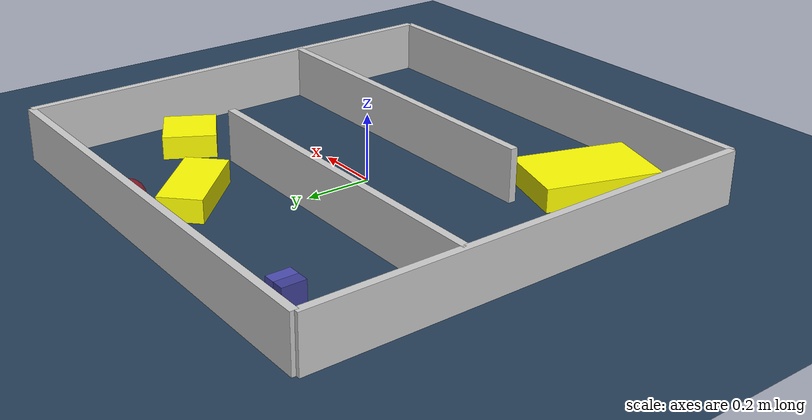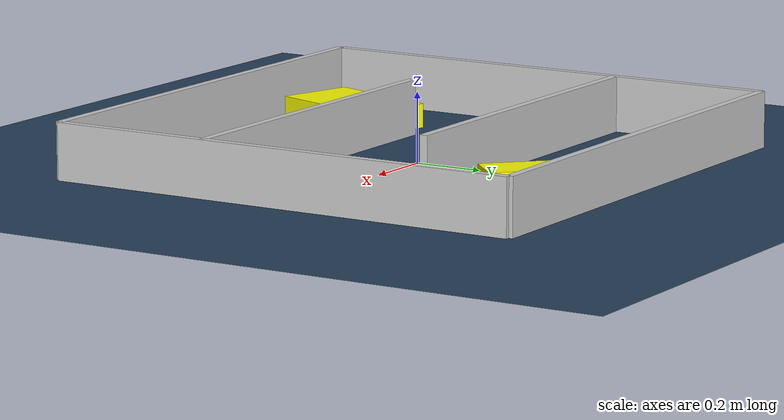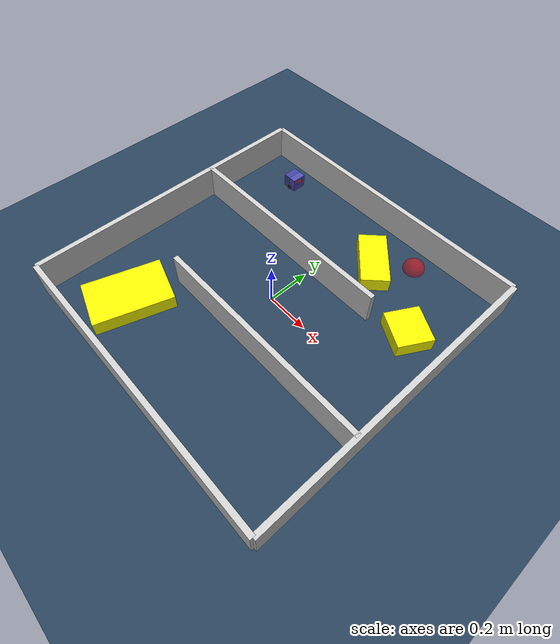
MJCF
<?xml version='1.0' encoding='utf-8'?>
<mujoco model="generated_environment">
  <option timestep="0.002" integrator="implicitfast" cone="elliptic" iterations="100" gravity="0 0 -9.81" />
  <default>
    <geom density="1" />
  </default>
  <asset>
    <texture builtin="gradient" height="3072" rgb1="0.3 0.5 0.7" rgb2="0 0 0" type="skybox" width="512" />
    <texture builtin="checker" height="300" mark="edge" markrgb="0.8 0.8 0.8" name="groundplane" rgb1="0.2 0.3 0.4" rgb2="0.1 0.2 0.3" type="2d" width="300" />
    <material name="groundplane" reflectance="0.2" texrepeat="5 5" texture="groundplane" texuniform="true" />
    <material name="robot" rgba="1.0 1.0 0.0 1.0" />
  </asset>
  <worldbody>
    <light dir="0 0 -1" directional="true" pos="0 0 1.5" />
    <geom condim="4" friction="0.5 0.005 0.001" material="groundplane" name="floor" size="0 0 0.05" type="plane" />
    <body name="walls">
      <geom name="wall_1" condim="4" pos="-0.699000 0.000000 0.080000" rgba="0.800000011920929 0.800000011920929 0.800000011920929 1.0" size="0.011650 0.699000 0.080000" type="box" />
      <geom name="wall_2" condim="4" pos="0.699000 0.000000 0.080000" rgba="0.800000011920929 0.800000011920929 0.800000011920929 1.0" size="0.011650 0.699000 0.080000" type="box" />
      <geom name="wall_3" condim="4" pos="0.000000 -0.699000 0.080000" rgba="0.800000011920929 0.800000011920929 0.800000011920929 1.0" size="0.699000 0.011650 0.080000" type="box" />
      <geom name="wall_4" condim="4" pos="0.000000 0.699000 0.080000" rgba="0.800000011920929 0.800000011920929 0.800000011920929 1.0" size="0.699000 0.011650 0.080000" type="box" />
      <geom name="wall_5" condim="4" pos="0.174750 -0.233000 0.080000" rgba="0.800000011920929 0.800000011920929 0.800000011920929 1.0" size="0.524250 0.011650 0.080000" type="box" />
      <geom name="wall_6" condim="4" pos="-0.174750 0.233000 0.080000" rgba="0.800000011920929 0.800000011920929 0.800000011920929 1.0" size="0.524250 0.011650 0.080000" type="box" />
    </body>
    <body name="car" pos="-0.45499999999999996 0.5650000000000001 0.010000">
      <freejoint name="car_freejoint" />
      <inertial pos="0.000000 0 0.037500" mass="0.350000" diaginertia="0.000266 0.000266 0.000286" />
      <geom name="front_chassis_collision" type="box" pos="0.017500 0 0.037500" size="0.017500 0.035000 0.032500" rgba="0.3 0.3 0.7 1" />
      <geom name="rear_chassis_collision" type="box" pos="-0.017500 0 0.037500" size="0.017500 0.035000 0.032500" rgba="0.25 0.25 0.6 1" />
      <geom name="front_marker" type="box" pos="0.034000 0 0.050500" size="0.002000 0.015000 0.010000" rgba="1.0 0.2 0.2 1" contype="0" conaffinity="0" />
      <body name="rear_support_body" pos="-0.030000 0.000000 0.002500">
        <joint name="rear_caster_joint" type="ball" damping="0.0001" />
        <inertial pos="0 0 0" mass="0.025000" diaginertia="0.000001 0.000001 0.000001" />
        <geom name="rear_support" type="sphere" pos="0 0 0" size="0.002500" friction="0.000000 0.000000 0.000000" rgba="0.7 0.1 0.1 1" />
      </body>
      <body name="front_support_body" pos="0.030000 0.000000 0.002500">
        <joint name="front_caster_joint" type="ball" damping="0.0001" />
        <inertial pos="0 0 0" mass="0.025000" diaginertia="0.000001 0.000001 0.000001" />
        <geom name="front_support" type="sphere" pos="0 0 0" size="0.002500" friction="0.000000 0.000000 0.000000" rgba="0.1 0.7 0.1 1" />
      </body>
      <body name="left_wheel" pos="0.000000 0.037500 0.015000">
        <inertial pos="0 0 0" mass="0.050000" diaginertia="0.000003 0.000006 0.000003" />
        <joint name="left_wheel_joint" type="hinge" axis="0 1 0" />
        <geom name="left_wheel_collision" type="cylinder" size="0.015000 0.000500" euler="90 0 0" rgba="0.1 0.1 0.1 1" />
      </body>
      <body name="right_wheel" pos="0.000000 -0.037500 0.015000">
        <inertial pos="0 0 0" mass="0.050000" diaginertia="0.000003 0.000006 0.000003" />
        <joint name="right_wheel_joint" type="hinge" axis="0 1 0" />
        <geom name="right_wheel_collision" type="cylinder" size="0.015000 0.000500" euler="90 0 0" rgba="0.1 0.1 0.1 1" />
      </body>
    </body>
    <body name="obstacle_0_movable">
      <geom name="obstacle_0_movable" condim="4" pos="0.17096386269996222 0.46114978750203317 0.035" euler="0 0 134.69553949338905" friction="0.0 0.005 0.001" rgba="1 1 0 1" size="0.13277843022036417 0.0643992479726268 0.035" type="box" mass="0.1" />
      <joint type="free" />
    </body>
    <body name="obstacle_1_movable">
      <geom name="obstacle_1_movable" condim="4" pos="-0.4004744202407996 -0.4622221067403707 0.035" euler="0 0 162.41726528442786" friction="0.0 0.005 0.001" rgba="1 1 0 1" size="0.11265873508042443 0.17597247903833502 0.035" type="box" mass="0.1" />
      <joint type="free" />
    </body>
    <body name="obstacle_2_movable">
      <geom name="obstacle_2_movable" condim="4" pos="0.5086997122962318 0.28969819521813567 0.035" euler="0 0 60.758810447852305" friction="0.0 0.005 0.001" rgba="1 1 0 1" size="0.07914794258436092 0.08447915460738306 0.035" type="box" mass="0.1" />
      <joint type="free" />
    </body>
    <site name="goal" type="sphere" pos="0.30500000000000027 0.5949999999999999 0.0" size="0.05" rgba="1 0 0 0.5" />
  </worldbody>
  <actuator>
    <velocity name="left_wheel_drive" joint="left_wheel_joint" ctrlrange="-25.000000 25.000000" kv="0.750000" forcerange="-0.300000 0.300000" />
    <velocity name="right_wheel_drive" joint="right_wheel_joint" ctrlrange="-25.000000 25.000000" kv="0.750000" forcerange="-0.300000 0.300000" />
  </actuator>
</mujoco>
